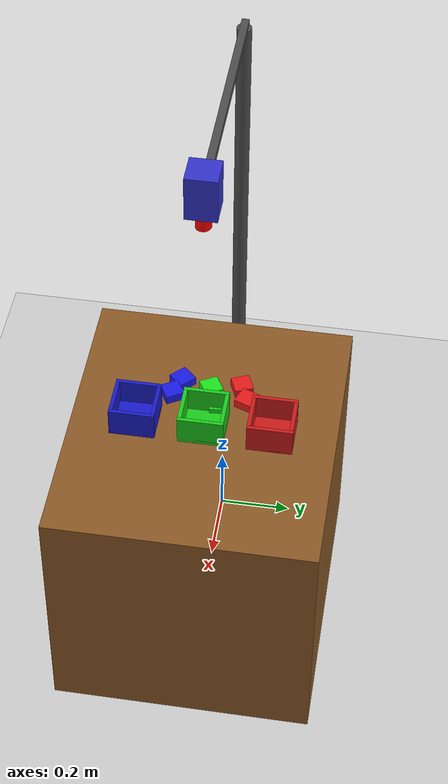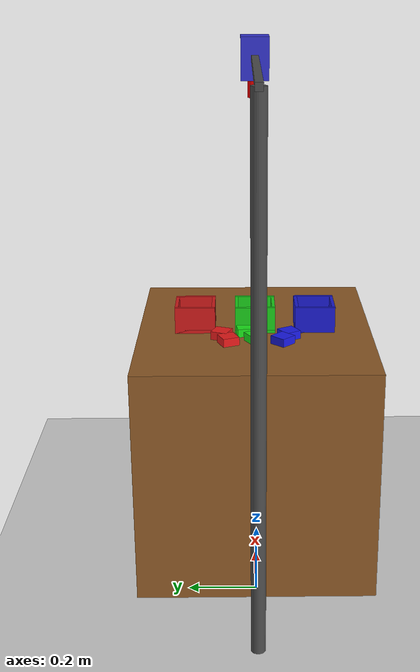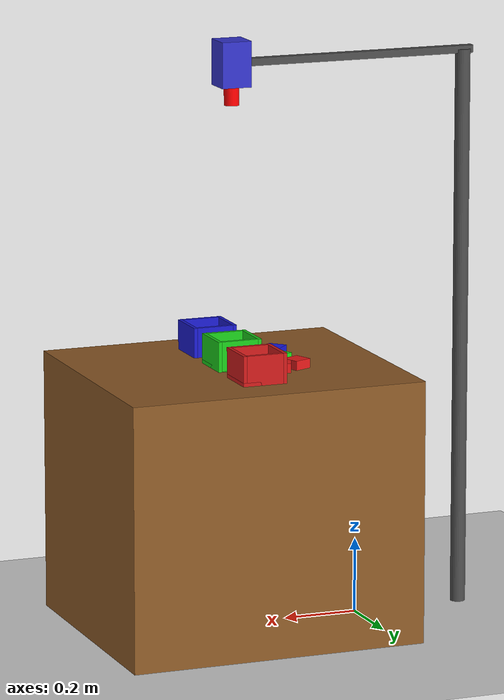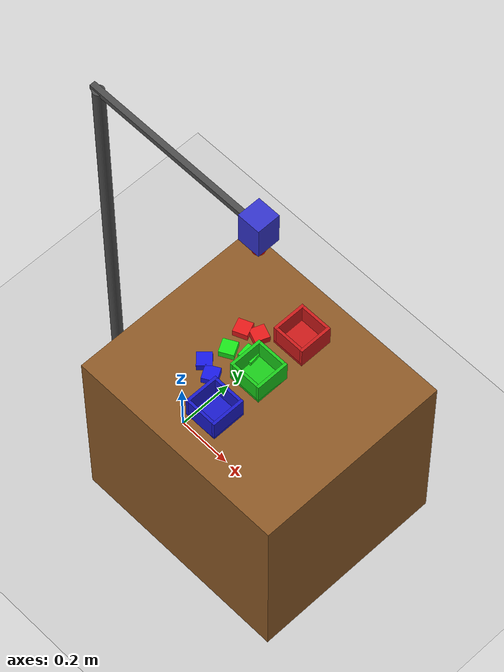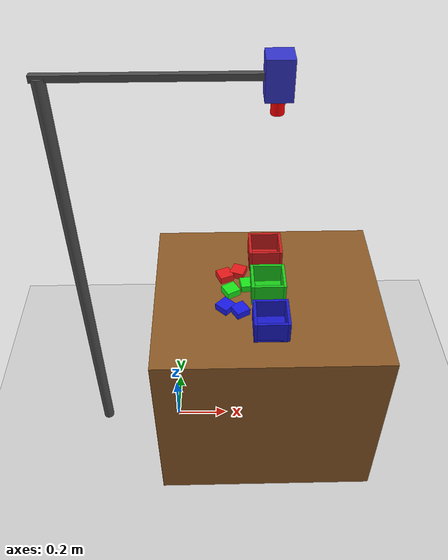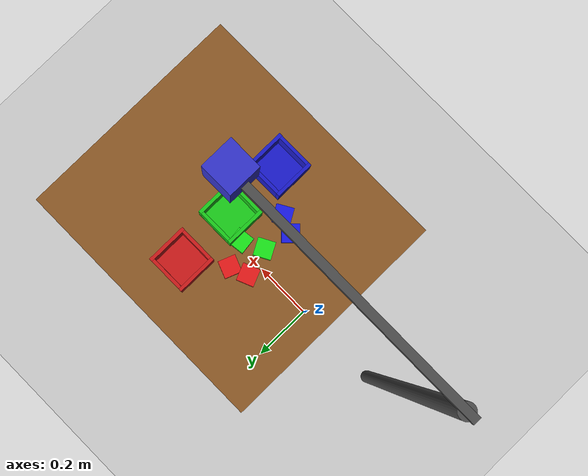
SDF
<?xml version="1.0"?>
<sdf version="1.6">
  <world name="sorting_world">

    <physics type="ode">
      <max_step_size>0.001</max_step_size>
      <real_time_factor>1</real_time_factor>
      <real_time_update_rate>1000</real_time_update_rate>
      <gravity>0 0 -9.8</gravity>
    </physics>

    <include>
      <uri>model://sun</uri>
    </include>

    <include>
      <uri>model://ground_plane</uri>
    </include>

    <model name="table">
      <static>true</static>
      <link name="table_link">
        <pose>0.35 0 0.35 0 0 0</pose>
        <collision name="collision">
          <geometry>
            <box>
              <size>0.8 0.7 0.7</size>
            </box>
          </geometry>
        </collision>
        <visual name="visual">
          <geometry>
            <box>
              <size>0.8 0.7 0.7</size>
            </box>
          </geometry>
          <material>
            <ambient>0.55 0.35 0.15 1</ambient>
            <diffuse>0.55 0.35 0.15 1</diffuse>
          </material>
        </visual>
      </link>
    </model>

    <model name="overhead_camera">
      <static>true</static>
      <pose>0.35 0 1.5 0 0 0</pose>
      <link name="camera_link">
        <inertial>
          <mass>0.5</mass>
        </inertial>

        <visual name="body_visual">
          <geometry>
            <box>
              <size>0.08 0.08 0.12</size>
            </box>
          </geometry>
          <material>
            <ambient>0.2 0.2 0.8 1</ambient>
            <diffuse>0.2 0.2 0.8 1</diffuse>
          </material>
        </visual>

        <visual name="lens_visual">
          <pose>0 0 -0.08 0 0 0</pose>
          <geometry>
            <cylinder>
              <radius>0.02</radius>
              <length>0.06</length>
            </cylinder>
          </geometry>
          <material>
            <ambient>1.0 0.0 0.0 1</ambient>
            <diffuse>1.0 0.0 0.0 1</diffuse>
          </material>
        </visual>

        <sensor type="camera" name="camera">
          <pose>0 0 -0.08 0 1.5708 3.14159</pose>
          <always_on>1</always_on>
          <visualize>false</visualize>
          <update_rate>30.0</update_rate>
          <camera>
            <horizontal_fov>1.2</horizontal_fov>
            <image>
              <width>640</width>
              <height>480</height>
              <format>R8G8B8</format>
            </image>
            <clip>
              <near>0.1</near>
              <far>5.0</far>
            </clip>
          </camera>
          <plugin name="camera_controller" filename="libgazebo_ros_camera.so">
            <alwaysOn>true</alwaysOn>
            <updateRate>30.0</updateRate>
            <cameraName>camera</cameraName>
            <imageTopicName>image_raw</imageTopicName>
            <cameraInfoTopicName>camera_info</cameraInfoTopicName>
            <frameName>camera_link</frameName>
          </plugin>
        </sensor>
      </link>
    </model>

    <model name="camera_stand">
      <static>true</static>
      <link name="pole">
        <pose>-0.3 0 0.75 0 0 0</pose>
        <visual name="visual">
          <geometry>
            <cylinder>
              <radius>0.02</radius>
              <length>1.5</length>
            </cylinder>
          </geometry>
          <material>
            <ambient>0.3 0.3 0.3 1</ambient>
            <diffuse>0.3 0.3 0.3 1</diffuse>
          </material>
        </visual>
      </link>
      <link name="arm">
        <pose>0.025 0 1.5 0 0 0</pose>
        <visual name="visual">
          <geometry>
            <box>
              <size>0.7 0.02 0.02</size>
            </box>
          </geometry>
          <material>
            <ambient>0.3 0.3 0.3 1</ambient>
            <diffuse>0.3 0.3 0.3 1</diffuse>
          </material>
        </visual>
      </link>
    </model>

    <model name="red_cube_1">
      <pose>0.20 0.08 0.70 0 0 0.4</pose>
      <link name="link">
        <inertial>
          <mass>0.08</mass>
          <inertia>
            <ixx>0.000021</ixx>
            <iyy>0.000021</iyy>
            <izz>0.000021</izz>
          </inertia>
        </inertial>
        <collision name="collision">
          <geometry>
            <box><size>0.05 0.05 0.05</size></box>
          </geometry>
          <surface>
            <friction><ode><mu>1.0</mu><mu2>1.0</mu2></ode></friction>
          </surface>
        </collision>
        <visual name="visual">
          <geometry>
            <box><size>0.05 0.05 0.05</size></box>
          </geometry>
          <material>
            <ambient>0.9 0.1 0.1 1</ambient>
            <diffuse>0.9 0.1 0.1 1</diffuse>
            <specular>0.5 0.5 0.5 1</specular>
          </material>
        </visual>
      </link>
    </model>

    <model name="red_cube_2">
      <pose>0.25 0.10 0.70 0 0 1.2</pose>
      <link name="link">
        <inertial>
          <mass>0.08</mass>
          <inertia>
            <ixx>0.000021</ixx>
            <iyy>0.000021</iyy>
            <izz>0.000021</izz>
          </inertia>
        </inertial>
        <collision name="collision">
          <geometry>
            <box><size>0.05 0.05 0.05</size></box>
          </geometry>
          <surface>
            <friction><ode><mu>1.0</mu><mu2>1.0</mu2></ode></friction>
          </surface>
        </collision>
        <visual name="visual">
          <geometry>
            <box><size>0.05 0.05 0.05</size></box>
          </geometry>
          <material>
            <ambient>0.9 0.1 0.1 1</ambient>
            <diffuse>0.9 0.1 0.1 1</diffuse>
            <specular>0.5 0.5 0.5 1</specular>
          </material>
        </visual>
      </link>
    </model>

    <model name="blue_cube_1">
      <pose>0.20 -0.08 0.70 0 0 0.8</pose>
      <link name="link">
        <inertial>
          <mass>0.08</mass>
          <inertia>
            <ixx>0.000021</ixx>
            <iyy>0.000021</iyy>
            <izz>0.000021</izz>
          </inertia>
        </inertial>
        <collision name="collision">
          <geometry>
            <box><size>0.05 0.05 0.05</size></box>
          </geometry>
          <surface>
            <friction><ode><mu>1.0</mu><mu2>1.0</mu2></ode></friction>
          </surface>
        </collision>
        <visual name="visual">
          <geometry>
            <box><size>0.05 0.05 0.05</size></box>
          </geometry>
          <material>
            <ambient>0.1 0.1 0.9 1</ambient>
            <diffuse>0.1 0.1 0.9 1</diffuse>
            <specular>0.5 0.5 0.5 1</specular>
          </material>
        </visual>
      </link>
    </model>

    <model name="blue_cube_2">
      <pose>0.25 -0.10 0.70 0 0 2.1</pose>
      <link name="link">
        <inertial>
          <mass>0.08</mass>
          <inertia>
            <ixx>0.000021</ixx>
            <iyy>0.000021</iyy>
            <izz>0.000021</izz>
          </inertia>
        </inertial>
        <collision name="collision">
          <geometry>
            <box><size>0.05 0.05 0.05</size></box>
          </geometry>
          <surface>
            <friction><ode><mu>1.0</mu><mu2>1.0</mu2></ode></friction>
          </surface>
        </collision>
        <visual name="visual">
          <geometry>
            <box><size>0.05 0.05 0.05</size></box>
          </geometry>
          <material>
            <ambient>0.1 0.1 0.9 1</ambient>
            <diffuse>0.1 0.1 0.9 1</diffuse>
            <specular>0.5 0.5 0.5 1</specular>
          </material>
        </visual>
      </link>
    </model>

    <model name="green_cube_1">
      <pose>0.22 0.0 0.70 0 0 0.5</pose>
      <link name="link">
        <inertial>
          <mass>0.08</mass>
          <inertia>
            <ixx>0.000021</ixx>
            <iyy>0.000021</iyy>
            <izz>0.000021</izz>
          </inertia>
        </inertial>
        <collision name="collision">
          <geometry>
            <box><size>0.05 0.05 0.05</size></box>
          </geometry>
          <surface>
            <friction><ode><mu>1.0</mu><mu2>1.0</mu2></ode></friction>
          </surface>
        </collision>
        <visual name="visual">
          <geometry>
            <box><size>0.05 0.05 0.05</size></box>
          </geometry>
          <material>
            <ambient>0.1 0.9 0.1 1</ambient>
            <diffuse>0.1 0.9 0.1 1</diffuse>
            <specular>0.5 0.5 0.5 1</specular>
          </material>
        </visual>
      </link>
    </model>

    <model name="green_cube_2">
      <pose>0.28 0.03 0.70 0 0 1.7</pose>
      <link name="link">
        <inertial>
          <mass>0.08</mass>
          <inertia>
            <ixx>0.000021</ixx>
            <iyy>0.000021</iyy>
            <izz>0.000021</izz>
          </inertia>
        </inertial>
        <collision name="collision">
          <geometry>
            <box><size>0.05 0.05 0.05</size></box>
          </geometry>
          <surface>
            <friction><ode><mu>1.0</mu><mu2>1.0</mu2></ode></friction>
          </surface>
        </collision>
        <visual name="visual">
          <geometry>
            <box><size>0.05 0.05 0.05</size></box>
          </geometry>
          <material>
            <ambient>0.1 0.9 0.1 1</ambient>
            <diffuse>0.1 0.9 0.1 1</diffuse>
            <specular>0.5 0.5 0.5 1</specular>
          </material>
        </visual>
      </link>
    </model>

    <model name="red_bin">
      <static>true</static>
      <pose>0.35 0.18 0.70 0 0 0</pose>
      <link name="link">
        <visual name="bottom">
          <pose>0 0 0 0 0 0</pose>
          <geometry><box><size>0.12 0.12 0.02</size></box></geometry>
          <material><ambient>0.8 0.1 0.1 1</ambient><diffuse>0.8 0.1 0.1 1</diffuse></material>
        </visual>
        <collision name="bottom_col">
          <pose>0 0 0 0 0 0</pose>
          <geometry><box><size>0.12 0.12 0.02</size></box></geometry>
        </collision>
        <visual name="wall1">
          <pose>0.055 0 0.04 0 0 0</pose>
          <geometry><box><size>0.01 0.12 0.08</size></box></geometry>
          <material><ambient>0.8 0.1 0.1 1</ambient><diffuse>0.8 0.1 0.1 1</diffuse></material>
        </visual>
        <collision name="wall1_col">
          <pose>0.055 0 0.04 0 0 0</pose>
          <geometry><box><size>0.01 0.12 0.08</size></box></geometry>
        </collision>
        <visual name="wall2">
          <pose>-0.055 0 0.04 0 0 0</pose>
          <geometry><box><size>0.01 0.12 0.08</size></box></geometry>
          <material><ambient>0.8 0.1 0.1 1</ambient><diffuse>0.8 0.1 0.1 1</diffuse></material>
        </visual>
        <collision name="wall2_col">
          <pose>-0.055 0 0.04 0 0 0</pose>
          <geometry><box><size>0.01 0.12 0.08</size></box></geometry>
        </collision>
        <visual name="wall3">
          <pose>0 0.055 0.04 0 0 0</pose>
          <geometry><box><size>0.1 0.01 0.08</size></box></geometry>
          <material><ambient>0.8 0.1 0.1 1</ambient><diffuse>0.8 0.1 0.1 1</diffuse></material>
        </visual>
        <collision name="wall3_col">
          <pose>0 0.055 0.04 0 0 0</pose>
          <geometry><box><size>0.1 0.01 0.08</size></box></geometry>
        </collision>
        <visual name="wall4">
          <pose>0 -0.055 0.04 0 0 0</pose>
          <geometry><box><size>0.1 0.01 0.08</size></box></geometry>
          <material><ambient>0.8 0.1 0.1 1</ambient><diffuse>0.8 0.1 0.1 1</diffuse></material>
        </visual>
        <collision name="wall4_col">
          <pose>0 -0.055 0.04 0 0 0</pose>
          <geometry><box><size>0.1 0.01 0.08</size></box></geometry>
        </collision>
      </link>
    </model>

    <model name="blue_bin">
      <static>true</static>
      <pose>0.35 -0.18 0.70 0 0 0</pose>
      <link name="link">
        <visual name="bottom">
          <pose>0 0 0 0 0 0</pose>
          <geometry><box><size>0.12 0.12 0.02</size></box></geometry>
          <material><ambient>0.1 0.1 0.8 1</ambient><diffuse>0.1 0.1 0.8 1</diffuse></material>
        </visual>
        <collision name="bottom_col">
          <pose>0 0 0 0 0 0</pose>
          <geometry><box><size>0.12 0.12 0.02</size></box></geometry>
        </collision>
        <visual name="wall1">
          <pose>0.055 0 0.04 0 0 0</pose>
          <geometry><box><size>0.01 0.12 0.08</size></box></geometry>
          <material><ambient>0.1 0.1 0.8 1</ambient><diffuse>0.1 0.1 0.8 1</diffuse></material>
        </visual>
        <collision name="wall1_col">
          <pose>0.055 0 0.04 0 0 0</pose>
          <geometry><box><size>0.01 0.12 0.08</size></box></geometry>
        </collision>
        <visual name="wall2">
          <pose>-0.055 0 0.04 0 0 0</pose>
          <geometry><box><size>0.01 0.12 0.08</size></box></geometry>
          <material><ambient>0.1 0.1 0.8 1</ambient><diffuse>0.1 0.1 0.8 1</diffuse></material>
        </visual>
        <collision name="wall2_col">
          <pose>-0.055 0 0.04 0 0 0</pose>
          <geometry><box><size>0.01 0.12 0.08</size></box></geometry>
        </collision>
        <visual name="wall3">
          <pose>0 0.055 0.04 0 0 0</pose>
          <geometry><box><size>0.1 0.01 0.08</size></box></geometry>
          <material><ambient>0.1 0.1 0.8 1</ambient><diffuse>0.1 0.1 0.8 1</diffuse></material>
        </visual>
        <collision name="wall3_col">
          <pose>0 0.055 0.04 0 0 0</pose>
          <geometry><box><size>0.1 0.01 0.08</size></box></geometry>
        </collision>
        <visual name="wall4">
          <pose>0 -0.055 0.04 0 0 0</pose>
          <geometry><box><size>0.1 0.01 0.08</size></box></geometry>
          <material><ambient>0.1 0.1 0.8 1</ambient><diffuse>0.1 0.1 0.8 1</diffuse></material>
        </visual>
        <collision name="wall4_col">
          <pose>0 -0.055 0.04 0 0 0</pose>
          <geometry><box><size>0.1 0.01 0.08</size></box></geometry>
        </collision>
      </link>
    </model>

    <model name="green_bin">
      <static>true</static>
      <pose>0.35 0.0 0.70 0 0 0</pose>
      <link name="link">
        <visual name="bottom">
          <pose>0 0 0 0 0 0</pose>
          <geometry><box><size>0.12 0.12 0.02</size></box></geometry>
          <material><ambient>0.1 0.8 0.1 1</ambient><diffuse>0.1 0.8 0.1 1</diffuse></material>
        </visual>
        <collision name="bottom_col">
          <pose>0 0 0 0 0 0</pose>
          <geometry><box><size>0.12 0.12 0.02</size></box></geometry>
        </collision>
        <visual name="wall1">
          <pose>0.055 0 0.04 0 0 0</pose>
          <geometry><box><size>0.01 0.12 0.08</size></box></geometry>
          <material><ambient>0.1 0.8 0.1 1</ambient><diffuse>0.1 0.8 0.1 1</diffuse></material>
        </visual>
        <collision name="wall1_col">
          <pose>0.055 0 0.04 0 0 0</pose>
          <geometry><box><size>0.01 0.12 0.08</size></box></geometry>
        </collision>
        <visual name="wall2">
          <pose>-0.055 0 0.04 0 0 0</pose>
          <geometry><box><size>0.01 0.12 0.08</size></box></geometry>
          <material><ambient>0.1 0.8 0.1 1</ambient><diffuse>0.1 0.8 0.1 1</diffuse></material>
        </visual>
        <collision name="wall2_col">
          <pose>-0.055 0 0.04 0 0 0</pose>
          <geometry><box><size>0.01 0.12 0.08</size></box></geometry>
        </collision>
        <visual name="wall3">
          <pose>0 0.055 0.04 0 0 0</pose>
          <geometry><box><size>0.1 0.01 0.08</size></box></geometry>
          <material><ambient>0.1 0.8 0.1 1</ambient><diffuse>0.1 0.8 0.1 1</diffuse></material>
        </visual>
        <collision name="wall3_col">
          <pose>0 0.055 0.04 0 0 0</pose>
          <geometry><box><size>0.1 0.01 0.08</size></box></geometry>
        </collision>
        <visual name="wall4">
          <pose>0 -0.055 0.04 0 0 0</pose>
          <geometry><box><size>0.1 0.01 0.08</size></box></geometry>
          <material><ambient>0.1 0.8 0.1 1</ambient><diffuse>0.1 0.8 0.1 1</diffuse></material>
        </visual>
        <collision name="wall4_col">
          <pose>0 -0.055 0.04 0 0 0</pose>
          <geometry><box><size>0.1 0.01 0.08</size></box></geometry>
        </collision>
      </link>
    </model>

  </world>
</sdf>
